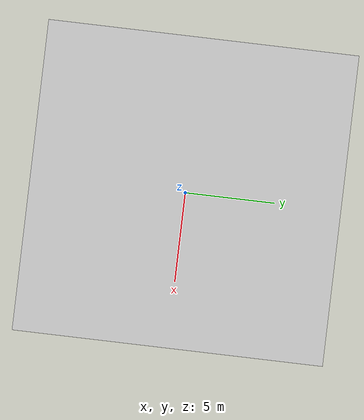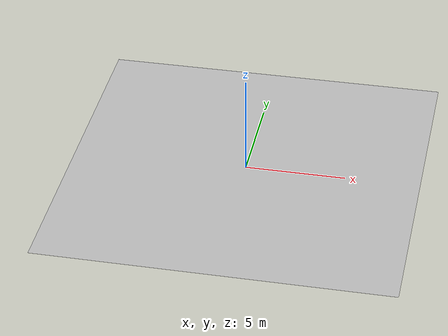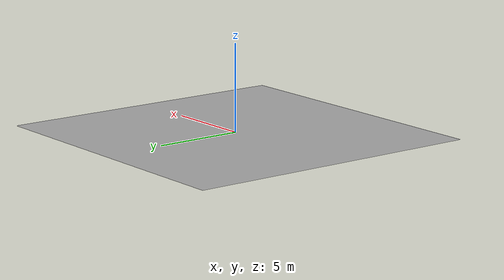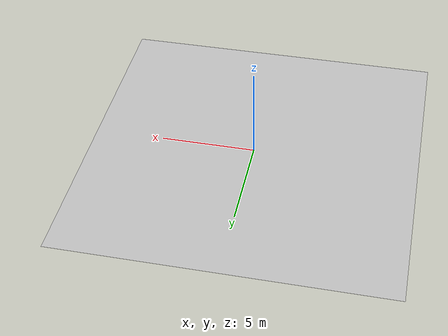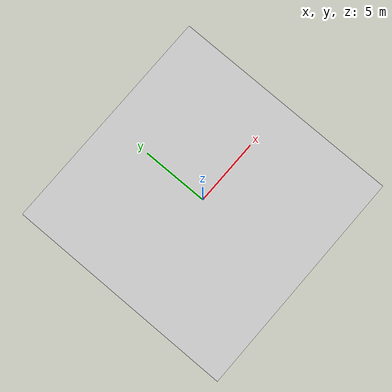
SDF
<?xml version="1.0" ?>
<sdf version="1.6">
  <model name="grassplane">
      <pose>0 0 0  0 0 0</pose>
      <static>true</static>
    <link name="link">
      <collision name="collision">
        <geometry>
          <plane>
            <normal>0 0 1</normal>
            <size>100 100</size>
          </plane>
        </geometry>
        <surface>
          <friction>
            <ode>
              <mu>100</mu>
              <mu2>50</mu2>
            </ode>
          </friction>
        </surface>
      </collision>
      <visual name="visual">
        <geometry>
          <mesh>
              <uri>model://grassplane/meshes/grassplane.dae</uri>
          </mesh>
        </geometry>
      </visual>
    </link>
  </model>
</sdf>
